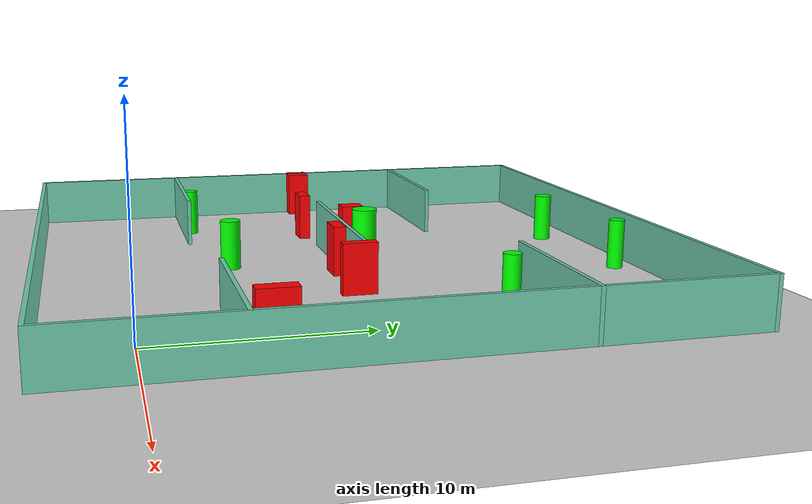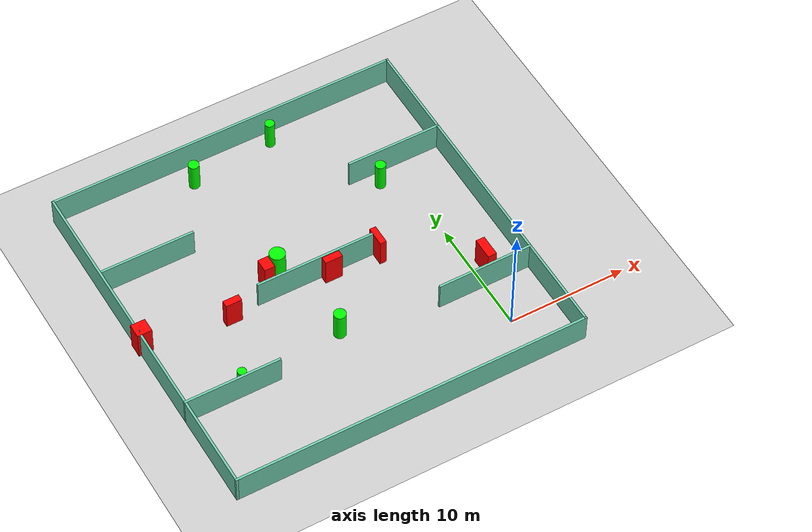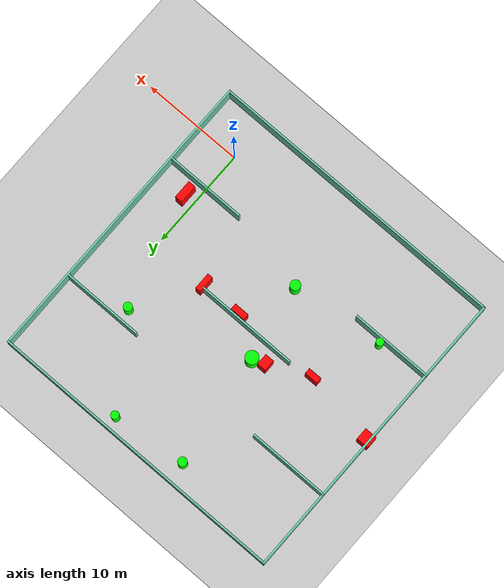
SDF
<sdf version="1.7">
 <world name="default">
  <light name="sun" type="directional">
   <pose>0 0 10 0 -0 0</pose>
   <diffuse>0.8 0.8 0.8 1</diffuse>
   <specular>0.2 0.2 0.2 1</specular>
   <attenuation>
    <range>1000</range>
    <constant>0.9</constant>
    <linear>0.01</linear>
    <quadratic>0.001</quadratic>
   </attenuation>
   <direction>-0.5 0.1 -0.9</direction>
   <spot><inner_angle>0</inner_angle><outer_angle>0</outer_angle><falloff>0</falloff></spot>
  </light>
  <model name="ground_plane">
   <static>1</static>
   <link name="link">
    <collision name="collision">
     <geometry><plane><normal>0 0 1</normal><size>100 100</size></plane></geometry>
     <surface>
      <contact><collide_bitmask>65535</collide_bitmask></contact>
      <friction><ode><mu>100</mu><mu2>50</mu2></ode></friction>
     </surface>
    </collision>
    <visual name="visual">
     <cast_shadows>0</cast_shadows>
     <geometry><plane><normal>0 0 1</normal><size>100 100</size></plane></geometry>
     <material>
      <script><uri>file://media/materials/scripts/gazebo.material</uri><name>Gazebo/Grey</name></script>
     </material>
    </visual>
   </link>
  </model>
  <gravity>0 0 -9.8</gravity>
  <magnetic_field>6e-06 2.3e-05 -4.2e-05</magnetic_field>
  <atmosphere type="adiabatic"/>
  <physics type="ode">
   <max_step_size>0.001</max_step_size>
   <real_time_factor>1</real_time_factor>
   <real_time_update_rate>1000</real_time_update_rate>
  </physics>
  <scene><ambient>0.4 0.4 0.4 1</ambient><background>0.7 0.7 0.7 1</background><shadows>1</shadows></scene>
  <spherical_coordinates>
   <surface_model>EARTH_WGS84</surface_model>
   <latitude_deg>0</latitude_deg>
   <longitude_deg>0</longitude_deg>
   <elevation>0</elevation>
   <heading_deg>0</heading_deg>
  </spherical_coordinates>
  <model name="my_base_walls">
   <link name="Wall_10">
    <collision name="Wall_10_Collision">
     <geometry><box><size>8.2 0.2 2.5</size></box></geometry>
     <pose>0 0 1.25 0 -0 0</pose>
    </collision>
    <visual name="Wall_10_Visual">
     <pose>0 0 1.25 0 -0 0</pose>
     <geometry><box><size>8.2 0.2 2.5</size></box></geometry>
     <material>
      <script><uri>file://media/materials/scripts/gazebo.material</uri><name>Gazebo/Grey</name></script>
      <ambient>0.435294 0.796078 0.67451 1</ambient>
     </material>
     <meta><layer>0</layer></meta>
    </visual>
    <pose>-11 -7 0 0 -0 0</pose>
   </link>
   <link name="Wall_12">
    <collision name="Wall_12_Collision">
     <geometry><box><size>8.2 0.2 2.5</size></box></geometry>
     <pose>0 0 1.25 0 -0 0</pose>
    </collision>
    <visual name="Wall_12_Visual">
     <pose>0 0 1.25 0 -0 0</pose>
     <geometry><box><size>8.2 0.2 2.5</size></box></geometry>
     <material>
      <script><uri>file://media/materials/scripts/gazebo.material</uri><name>Gazebo/Grey</name></script>
      <ambient>0.435294 0.796078 0.67451 1</ambient>
     </material>
     <meta><layer>0</layer></meta>
    </visual>
    <pose>-11 7 0 0 -0 0</pose>
   </link>
   <link name="Wall_14">
    <collision name="Wall_14_Collision">
     <geometry><box><size>8.2 0.2 2.5</size></box></geometry>
     <pose>0 0 1.25 0 -0 0</pose>
    </collision>
    <visual name="Wall_14_Visual">
     <pose>0 0 1.25 0 -0 0</pose>
     <geometry><box><size>8.2 0.2 2.5</size></box></geometry>
     <material>
      <script><uri>file://media/materials/scripts/gazebo.material</uri><name>Gazebo/Grey</name></script>
      <ambient>0.435294 0.796078 0.67451 1</ambient>
     </material>
     <meta><layer>0</layer></meta>
    </visual>
    <pose>11 7 0 0 -0 3.14159</pose>
   </link>
   <link name="Wall_16">
    <collision name="Wall_16_Collision">
     <geometry><box><size>10.2 0.2 2.5</size></box></geometry>
     <pose>0 0 1.25 0 -0 0</pose>
    </collision>
    <visual name="Wall_16_Visual">
     <pose>0 0 1.25 0 -0 0</pose>
     <geometry><box><size>10.2 0.2 2.5</size></box></geometry>
     <material>
      <script><uri>file://media/materials/scripts/gazebo.material</uri><name>Gazebo/Grey</name></script>
      <ambient>0.435294 0.796078 0.67451 1</ambient>
     </material>
     <meta><layer>0</layer></meta>
    </visual>
    <pose>0 0 0 0 -0 3.14159</pose>
   </link>
   <link name="Wall_2">
    <collision name="Wall_2_Collision">
     <geometry><box><size>30.2 0.2 2.5</size></box></geometry>
     <pose>0 0 1.25 0 -0 0</pose>
    </collision>
    <visual name="Wall_2_Visual">
     <pose>0 0 1.25 0 -0 0</pose>
     <geometry><box><size>30.2 0.2 2.5</size></box></geometry>
     <material>
      <script><uri>file://media/materials/scripts/gazebo.material</uri><name>Gazebo/Grey</name></script>
      <ambient>0.435294 0.796078 0.67451 1</ambient>
     </material>
     <meta><layer>0</layer></meta>
    </visual>
    <pose>0 -15 0 0 -0 3.14159</pose>
   </link>
   <link name="Wall_3">
    <collision name="Wall_3_Collision">
     <geometry><box><size>30.2 0.2 2.5</size></box></geometry>
     <pose>0 0 1.25 0 -0 0</pose>
    </collision>
    <visual name="Wall_3_Visual">
     <pose>0 0 1.25 0 -0 0</pose>
     <geometry><box><size>30.2 0.2 2.5</size></box></geometry>
     <material>
      <script><uri>file://media/materials/scripts/gazebo.material</uri><name>Gazebo/Grey</name></script>
      <ambient>0.435294 0.796078 0.67451 1</ambient>
     </material>
     <meta><layer>0</layer></meta>
    </visual>
    <pose>-15 0 0 0 -0 1.5708</pose>
   </link>
   <link name="Wall_4">
    <collision name="Wall_4_Collision">
     <geometry><box><size>30.2 0.2 2.5</size></box></geometry>
     <pose>0 0 1.25 0 -0 0</pose>
    </collision>
    <visual name="Wall_4_Visual">
     <pose>0 0 1.25 0 -0 0</pose>
     <geometry><box><size>30.2 0.2 2.5</size></box></geometry>
     <material>
      <script><uri>file://media/materials/scripts/gazebo.material</uri><name>Gazebo/Grey</name></script>
      <ambient>0.435294 0.796078 0.67451 1</ambient>
     </material>
     <meta><layer>0</layer></meta>
    </visual>
    <pose>0 15 0 0 -0 0</pose>
   </link>
   <link name="Wall_6">
    <collision name="Wall_6_Collision">
     <geometry><box><size>30.2 0.2 2.5</size></box></geometry>
     <pose>0 0 1.25 0 -0 0</pose>
    </collision>
    <visual name="Wall_6_Visual">
     <pose>0 0 1.25 0 -0 0</pose>
     <geometry><box><size>30.2 0.2 2.5</size></box></geometry>
     <material>
      <script><uri>file://media/materials/scripts/gazebo.material</uri><name>Gazebo/Grey</name></script>
      <ambient>0.435294 0.796078 0.67451 1</ambient>
     </material>
     <meta><layer>0</layer></meta>
    </visual>
    <pose>15 0 0 0 -0 1.5708</pose>
   </link>
   <link name="Wall_8">
    <collision name="Wall_8_Collision">
     <geometry><box><size>8.2 0.2 2.5</size></box></geometry>
     <pose>0 0 1.25 0 -0 0</pose>
    </collision>
    <visual name="Wall_8_Visual">
     <pose>0 0 1.25 0 -0 0</pose>
     <geometry><box><size>8.2 0.2 2.5</size></box></geometry>
     <material>
      <script><uri>file://media/materials/scripts/gazebo.material</uri><name>Gazebo/Grey</name></script>
      <ambient>0.435294 0.796078 0.67451 1</ambient>
     </material>
     <meta><layer>0</layer></meta>
    </visual>
    <pose>11 -7 0 0 -0 3.14159</pose>
   </link>
   <static>1</static>
   <pose>-11 11 0 0 -0 0</pose>
  </model>
  <model name="cylinder1">
   <static>1</static>
   <link name="link">
    <inertial>
     <mass>1</mass>
     <inertia><ixx>0.5</ixx><ixy>0</ixy><ixz>0</ixz><iyy>0.5</iyy><iyz>0</iyz><izz>1</izz></inertia>
    </inertial>
    <collision name="collision">
     <geometry><cylinder><radius>0.3696399020697032</radius><length>2.5</length></cylinder></geometry>
    </collision>
    <visual name="visual">
     <geometry><cylinder><radius>0.3696399020697032</radius><length>2.5</length></cylinder></geometry>
     <material>
      <ambient>0 1 0 1</ambient>
      <diffuse>0 1 0 1</diffuse>
      <specular>0.1 0.1 0.1 1</specular>
      <emissive>0 0 0 0</emissive>
     </material>
    </visual>
   </link>
   <pose>-20.99396307401757 4.422264573435048 1.25 0 0 0</pose>
  </model>
  <model name="cylinder2">
   <static>1</static>
   <link name="link">
    <inertial>
     <mass>1</mass>
     <inertia><ixx>0.5</ixx><ixy>0</ixy><ixz>0</ixz><iyy>0.5</iyy><iyz>0</iyz><izz>1</izz></inertia>
    </inertial>
    <collision name="collision">
     <geometry><cylinder><radius>0.5092004177459806</radius><length>2.5</length></cylinder></geometry>
    </collision>
    <visual name="visual">
     <geometry><cylinder><radius>0.5092004177459806</radius><length>2.5</length></cylinder></geometry>
     <material>
      <ambient>0 1 0 1</ambient>
      <diffuse>0 1 0 1</diffuse>
      <specular>0.1 0.1 0.1 1</specular>
      <emissive>0 0 0 0</emissive>
     </material>
    </visual>
   </link>
   <pose>-11.976341514640746 5.484530142743083 1.25 0 0 0</pose>
  </model>
  <model name="cylinder3">
   <static>1</static>
   <link name="link">
    <inertial>
     <mass>1</mass>
     <inertia><ixx>0.5</ixx><ixy>0</ixy><ixz>0</ixz><iyy>0.5</iyy><iyz>0</iyz><izz>1</izz></inertia>
    </inertial>
    <collision name="collision">
     <geometry><cylinder><radius>0.6549656034092153</radius><length>2.5</length></cylinder></geometry>
    </collision>
    <visual name="visual">
     <geometry><cylinder><radius>0.6549656034092153</radius><length>2.5</length></cylinder></geometry>
     <material>
      <ambient>0 1 0 1</ambient>
      <diffuse>0 1 0 1</diffuse>
      <specular>0.1 0.1 0.1 1</specular>
      <emissive>0 0 0 0</emissive>
     </material>
    </visual>
   </link>
   <pose>-13.296705797992185 12.922454672749831 1.25 0 0 0</pose>
  </model>
  <model name="cylinder4">
   <static>1</static>
   <link name="link">
    <inertial>
     <mass>1</mass>
     <inertia><ixx>0.5</ixx><ixy>0</ixy><ixz>0</ixz><iyy>0.5</iyy><iyz>0</iyz><izz>1</izz></inertia>
    </inertial>
    <collision name="collision">
     <geometry><cylinder><radius>0.4280426307761893</radius><length>2.5</length></cylinder></geometry>
    </collision>
    <visual name="visual">
     <geometry><cylinder><radius>0.4280426307761893</radius><length>2.5</length></cylinder></geometry>
     <material>
      <ambient>0 1 0 1</ambient>
      <diffuse>0 1 0 1</diffuse>
      <specular>0.1 0.1 0.1 1</specular>
      <emissive>0 0 0 0</emissive>
     </material>
    </visual>
   </link>
   <pose>-1.9536028946972621 16.70917602025353 1.25 0 0 0</pose>
  </model>
  <model name="cylinder5">
   <static>1</static>
   <link name="link">
    <inertial>
     <mass>1</mass>
     <inertia><ixx>0.5</ixx><ixy>0</ixy><ixz>0</ixz><iyy>0.5</iyy><iyz>0</iyz><izz>1</izz></inertia>
    </inertial>
    <collision name="collision">
     <geometry><cylinder><radius>0.39581129216864364</radius><length>2.5</length></cylinder></geometry>
    </collision>
    <visual name="visual">
     <geometry><cylinder><radius>0.39581129216864364</radius><length>2.5</length></cylinder></geometry>
     <material>
      <ambient>0 1 0 1</ambient>
      <diffuse>0 1 0 1</diffuse>
      <specular>0.1 0.1 0.1 1</specular>
      <emissive>0 0 0 0</emissive>
     </material>
    </visual>
   </link>
   <pose>-7.478494139832826 24.75115193002266 1.25 0 0 0</pose>
  </model>
  <model name="cylinder6">
   <static>1</static>
   <link name="link">
    <inertial>
     <mass>1</mass>
     <inertia><ixx>0.5</ixx><ixy>0</ixy><ixz>0</ixz><iyy>0.5</iyy><iyz>0</iyz><izz>1</izz></inertia>
    </inertial>
    <collision name="collision">
     <geometry><cylinder><radius>0.4480539840438077</radius><length>2.5</length></cylinder></geometry>
    </collision>
    <visual name="visual">
     <geometry><cylinder><radius>0.4480539840438077</radius><length>2.5</length></cylinder></geometry>
     <material>
      <ambient>0 1 0 1</ambient>
      <diffuse>0 1 0 1</diffuse>
      <specular>0.1 0.1 0.1 1</specular>
      <emissive>0 0 0 0</emissive>
     </material>
    </visual>
   </link>
   <pose>-14.719811019368938 23.957840160020922 1.25 0 0 0</pose>
  </model>
  <model name="box1">
   <static>1</static>
   <link name="link">
    <inertial>
     <mass>1</mass>
     <inertia><ixx>0.083</ixx><ixy>0</ixy><ixz>0</ixz><iyy>0.083</iyy><iyz>0</iyz><izz>0.083</izz></inertia>
    </inertial>
    <collision name="collision">
     <geometry><box><size>1.3635970380864988 0.584913681769901 2.5</size></box></geometry>
    </collision>
    <visual name="visual">
     <geometry><box><size>1.3635970380864988 0.584913681769901 2.5</size></box></geometry>
     <material>
      <ambient>1 0 0 1</ambient>
      <diffuse>1 0 0 1</diffuse>
      <specular>0.1 0.1 0.1 1</specular>
      <emissive>0 0 0 0</emissive>
     </material>
    </visual>
    <sensor name="my_contact" type="contact">
     <contact><collision>box_collision</collision><topic>__default_topic__</topic></contact>
    </sensor>
   </link>
   <pose>-18.47476179796279 10.601473226573868 1.25 0 0 0</pose>
  </model>
  <model name="box2">
   <static>1</static>
   <link name="link">
    <inertial>
     <mass>1</mass>
     <inertia><ixx>0.083</ixx><ixy>0</ixy><ixz>0</ixz><iyy>0.083</iyy><iyz>0</iyz><izz>0.083</izz></inertia>
    </inertial>
    <collision name="collision">
     <geometry><box><size>1.2410298384197618 1.2144296694008956 2.5</size></box></geometry>
    </collision>
    <visual name="visual">
     <geometry><box><size>1.2410298384197618 1.2144296694008956 2.5</size></box></geometry>
     <material>
      <ambient>1 0 0 1</ambient>
      <diffuse>1 0 0 1</diffuse>
      <specular>0.1 0.1 0.1 1</specular>
      <emissive>0 0 0 0</emissive>
     </material>
    </visual>
    <sensor name="my_contact" type="contact">
     <contact><collision>box_collision</collision><topic>__default_topic__</topic></contact>
    </sensor>
   </link>
   <pose>-25.67912322420973 11.714023142572643 1.25 0 0 0</pose>
  </model>
  <model name="box3">
   <static>1</static>
   <link name="link">
    <inertial>
     <mass>1</mass>
     <inertia><ixx>0.083</ixx><ixy>0</ixy><ixz>0</ixz><iyy>0.083</iyy><iyz>0</iyz><izz>0.083</izz></inertia>
    </inertial>
    <collision name="collision">
     <geometry><box><size>0.7532057714778624 1.849185861923769 2.5</size></box></geometry>
    </collision>
    <visual name="visual">
     <geometry><box><size>0.7532057714778624 1.849185861923769 2.5</size></box></geometry>
     <material>
      <ambient>1 0 0 1</ambient>
      <diffuse>1 0 0 1</diffuse>
      <specular>0.1 0.1 0.1 1</specular>
      <emissive>0 0 0 0</emissive>
     </material>
    </visual>
    <sensor name="my_contact" type="contact">
     <contact><collision>box_collision</collision><topic>__default_topic__</topic></contact>
    </sensor>
   </link>
   <pose>0.9855175881631624 5.531792128312791 1.25 0 0 0</pose>
  </model>
  <model name="box4">
   <static>1</static>
   <link name="link">
    <inertial>
     <mass>1</mass>
     <inertia><ixx>0.083</ixx><ixy>0</ixy><ixz>0</ixz><iyy>0.083</iyy><iyz>0</iyz><izz>0.083</izz></inertia>
    </inertial>
    <collision name="collision">
     <geometry><box><size>0.5407980941571893 1.6940389803071463 2.5</size></box></geometry>
    </collision>
    <visual name="visual">
     <geometry><box><size>0.5407980941571893 1.6940389803071463 2.5</size></box></geometry>
     <material>
      <ambient>1 0 0 1</ambient>
      <diffuse>1 0 0 1</diffuse>
      <specular>0.1 0.1 0.1 1</specular>
      <emissive>0 0 0 0</emissive>
     </material>
    </visual>
    <sensor name="my_contact" type="contact">
     <contact><collision>box_collision</collision><topic>__default_topic__</topic></contact>
    </sensor>
   </link>
   <pose>-5.682844998377973 10.644623406657098 1.25 0 0 0</pose>
  </model>
  <model name="box5">
   <static>1</static>
   <link name="link">
    <inertial>
     <mass>1</mass>
     <inertia><ixx>0.083</ixx><ixy>0</ixy><ixz>0</ixz><iyy>0.083</iyy><iyz>0</iyz><izz>0.083</izz></inertia>
    </inertial>
    <collision name="collision">
     <geometry><box><size>0.9038034754412708 1.1499169149983635 2.5</size></box></geometry>
    </collision>
    <visual name="visual">
     <geometry><box><size>0.9038034754412708 1.1499169149983635 2.5</size></box></geometry>
     <material>
      <ambient>1 0 0 1</ambient>
      <diffuse>1 0 0 1</diffuse>
      <specular>0.1 0.1 0.1 1</specular>
      <emissive>0 0 0 0</emissive>
     </material>
    </visual>
    <sensor name="my_contact" type="contact">
     <contact><collision>box_collision</collision><topic>__default_topic__</topic></contact>
    </sensor>
   </link>
   <pose>-14.50116601025608 12.472762030187706 1.25 0 0 0</pose>
  </model>
  <model name="box6">
   <static>1</static>
   <link name="link">
    <inertial>
     <mass>1</mass>
     <inertia><ixx>0.083</ixx><ixy>0</ixy><ixz>0</ixz><iyy>0.083</iyy><iyz>0</iyz><izz>0.083</izz></inertia>
    </inertial>
    <collision name="collision">
     <geometry><box><size>1.492524471495216 0.6176525942983466 2.5</size></box></geometry>
    </collision>
    <visual name="visual">
     <geometry><box><size>1.492524471495216 0.6176525942983466 2.5</size></box></geometry>
     <material>
      <ambient>1 0 0 1</ambient>
      <diffuse>1 0 0 1</diffuse>
      <specular>0.1 0.1 0.1 1</specular>
      <emissive>0 0 0 0</emissive>
     </material>
    </visual>
    <sensor name="my_contact" type="contact">
     <contact><collision>box_collision</collision><topic>__default_topic__</topic></contact>
    </sensor>
   </link>
   <pose>-9.789419989158052 10.541045547713821 1.25 0 0 0</pose>
  </model>
 </world>
</sdf>
